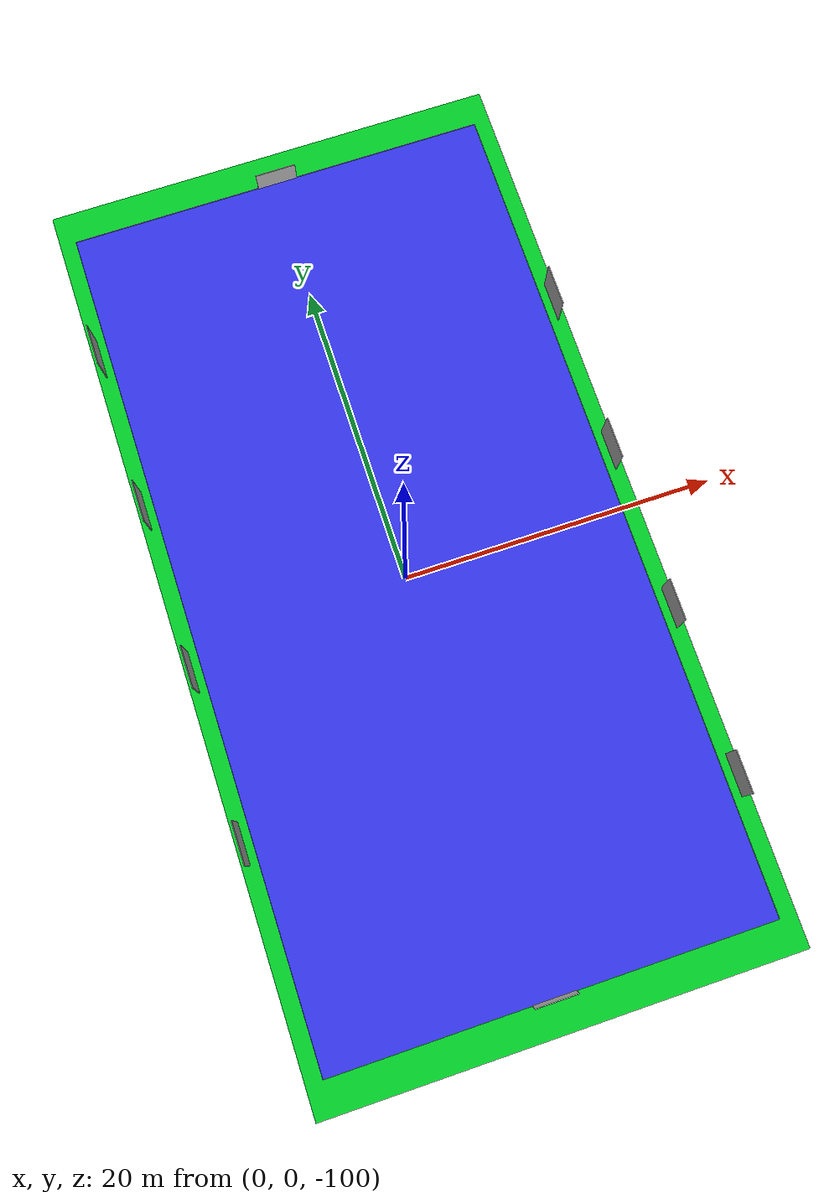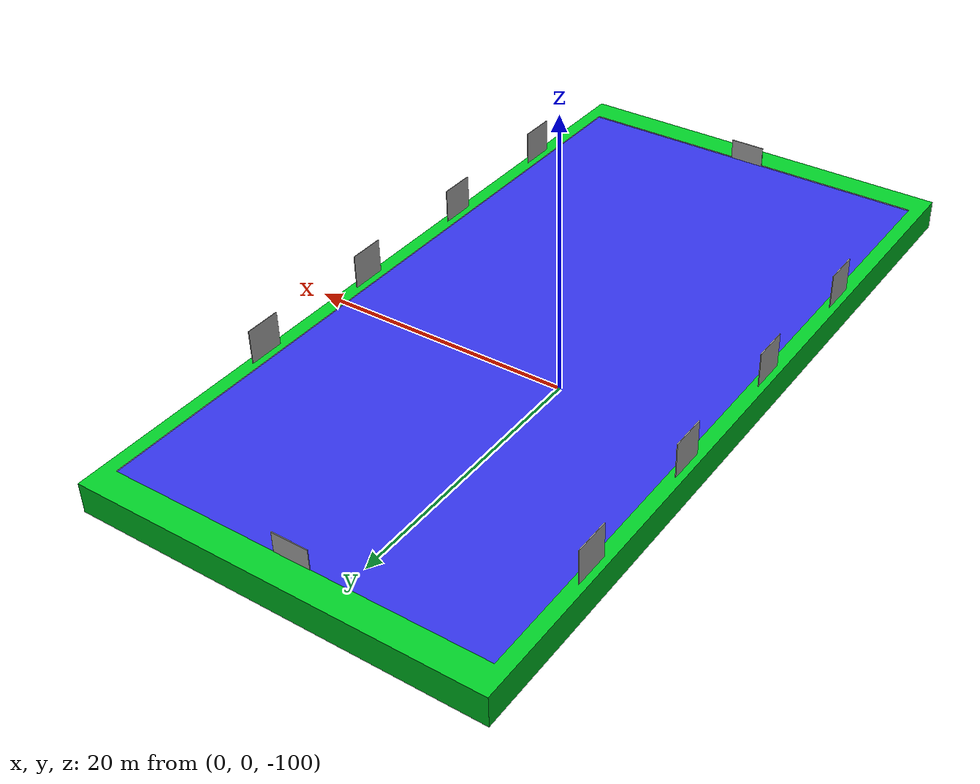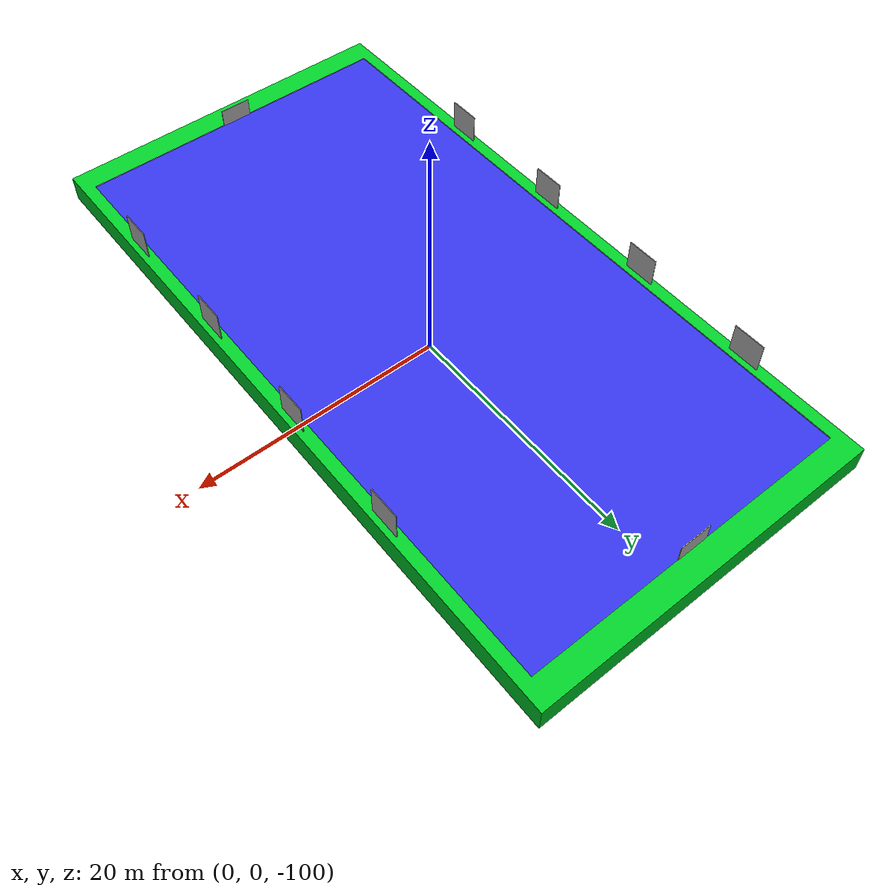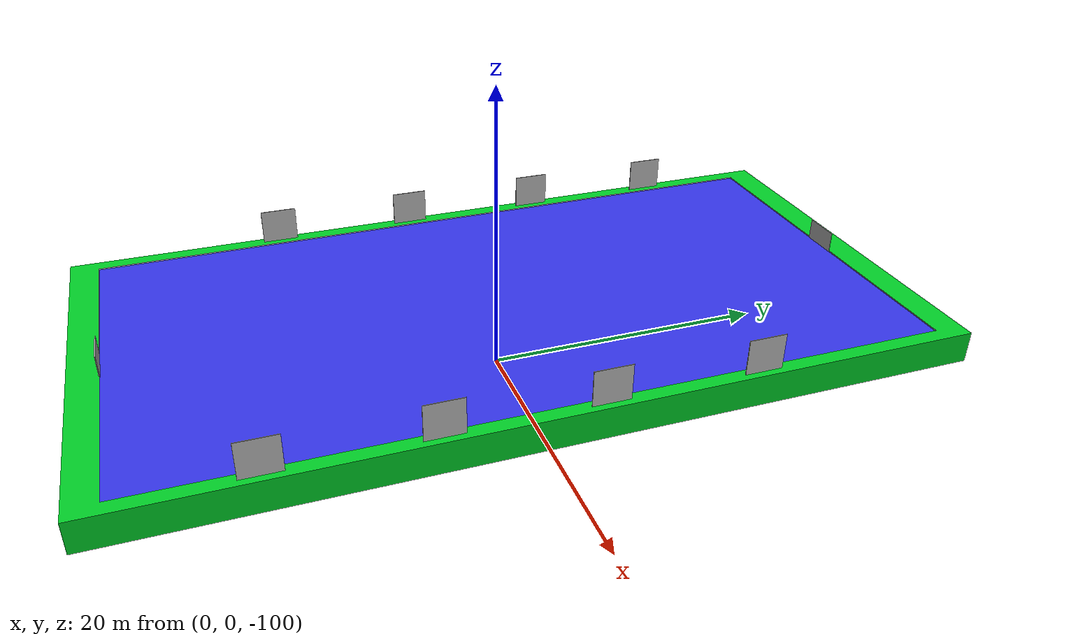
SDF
<?xml version="1.0" ?>
<sdf version="1.5">
  <world name="default">
    <!-- Origin placed somewhere in the middle of the North Sea  -->

    <!-- Global light source -->
    <include>
      <uri>model://sun</uri>
    </include>

    <model name="water">
      <static>true</static>
      <pose>0 0 -95.98 3.1415 0 3.1415</pose>
      <link name="link">
        <visual name="visual">
          <transparency>0.1</transparency>
          <cast_shadows>false</cast_shadows>
          <geometry>
            <box>
              <size>26 51 2</size>
            </box>
          </geometry>
          <material>
            <ambient>0.2 0.2 0.9 1</ambient>
            <diffuse>0.2 0.2 0.9 1</diffuse>
            <specular>0.1 0.1 0.3 1</specular>
            <emissive>0 0 0 1</emissive>
          </material>
        </visual>
        <collision name="collision">
          <geometry>
            <box>
              <size>26 51 2</size>
            </box>
          </geometry>
        </collision>
      </link>
    </model>

    <model name="pool">
      <pose>0 0 -97 0 0 0</pose>
      <static>true</static>
      <link name="ground">
        <visual name="visual">
          <geometry>
            <mesh>
              <uri>model://pool/pool2.dae</uri>
              <scale>1 1 1</scale>
            </mesh>
          </geometry>
        </visual>
        <collision name="collision">
          <geometry>
              <mesh>
                <uri>model://pool/pool2.dae</uri>
                <scale>1 1 1</scale>
              </mesh>
          </geometry>
        </collision>
      </link>
    </model>

    <!-- Include the AprilTag in the swimming pool (on the side of the pool) -->
    <include>
      <uri>model://ar_tag</uri>
      <name>ar_tag1</name>
      <pose>-13.5 17.5 -95 0 0 0</pose>
    </include>

    <include>
      <uri>model://ar_tag</uri>
      <name>ar_tag2</name>
      <pose>-13.5 7.5 -95 0 0 0</pose>
    </include>

    <include>
      <uri>model://ar_tag</uri>
      <name>ar_tag3</name>
      <pose>-13.5 -2.5 -95 0 0 0</pose>
    </include>

    <include>
      <uri>model://ar_tag</uri>
      <name>ar_tag4</name>
      <pose>-13.5 -12.5 -95 0 0 0</pose>
    </include>

    <include>
      <uri>model://ar_tag</uri>
      <name>ar_tag5</name>
      <pose>0 25.5 -96 0 0 1.5708</pose>
    </include>

    <include>
      <uri>model://ar_tag</uri>
      <name>ar_tag6</name>
      <pose>0 -25.5 -96 0 0 1.5708</pose>
    </include>

    <include>
      <uri>model://ar_tag</uri>
      <name>ar_tag22</name>
      <pose>13.5 12.5 -95 0 0 0</pose>
    </include>

    <include>
      <uri>model://ar_tag</uri>
      <name>ar_tag23</name>
      <pose>13.5 2.5 -95 0 0 0</pose>
    </include>

    <include>
      <uri>model://ar_tag</uri>
      <name>ar_tag24</name>
      <pose>13.5 -7.5 -95 0 0 0</pose>
    </include>

    <include>
      <uri>model://ar_tag</uri>
      <name>ar_tag25</name>
      <pose>13.5 -17.5 -95 0 0 0</pose>
    </include>

    <plugin name="underwater_current_plugin" filename="libuuv_underwater_current_ros_plugin.so">
      <namespace>hydrodynamics</namespace>
      <constant_current>
        <topic>current_velocity</topic>
        <velocity>
          <mean>0</mean>
          <min>0</min>
          <max>5</max>
          <mu>0.0</mu>
          <noiseAmp>0.0</noiseAmp>
        </velocity>

        <horizontal_angle>
          <mean>0</mean>
          <min>-3.141592653589793238</min>
          <max>3.141592653589793238</max>
          <mu>0.0</mu>
          <noiseAmp>0.0</noiseAmp>
        </horizontal_angle>

        <vertical_angle>
          <mean>0</mean>
          <min>-3.141592653589793238</min>
          <max>3.141592653589793238</max>
          <mu>0.0</mu>
          <noiseAmp>0.0</noiseAmp>
        </vertical_angle>
      </constant_current>
    </plugin>

    <plugin name="sc_interface" filename="libuuv_sc_ros_interface_plugin.so"/>

    <gui fullscreen='0'>
      <camera name='user_camera'>
        <pose frame=''>-25 25 -55 0 0 -0.8</pose>
        <view_controller>orbit</view_controller>
        <projection_type>perspective</projection_type>
      </camera>
    </gui>

  </world>
</sdf>

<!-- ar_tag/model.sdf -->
<sdf version="1.6">
  <model name="Marker0">
    <static>true</static>
    <link name="link">
      <visual name="visual">
        <geometry>
          <mesh>
            <uri>model://ar_tag/meshes/Marker1.dae</uri>
            <scale>5 5 5</scale> // Scale the ar_tag ******
          </mesh>
        </geometry>
      </visual>
    </link>
  </model>
</sdf>
